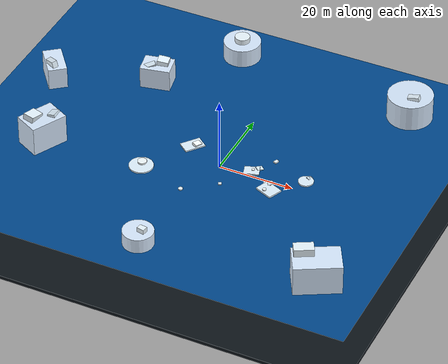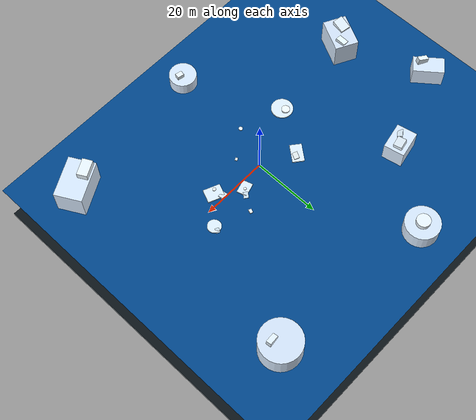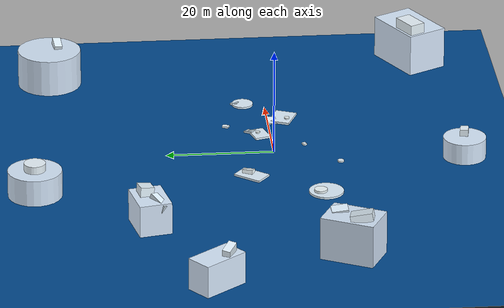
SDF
<?xml version="1.0"?>
<sdf version="1.8">
  <world name="ice_ocean">
    <physics name="default_physics" type="ignored">
      <max_step_size>0.004</max_step_size>
      <real_time_factor>1.0</real_time_factor>
    </physics>
    <gravity>0 0 -9.8</gravity>

    <scene>
      <ambient>0.45 0.50 0.60 1</ambient>
      <background>0.58 0.72 0.90 1</background>
      <shadows>true</shadows>
      <grid>false</grid>
      <fog>
        <color>0.68 0.75 0.85 1</color>
        <type>linear</type>
        <start>40</start>
        <end>250</end>
      </fog>
    </scene>

    <plugin filename="ignition-gazebo-physics-system" name="ignition::gazebo::systems::Physics"/>
    <plugin filename="ignition-gazebo-user-commands-system" name="ignition::gazebo::systems::UserCommands"/>
    <plugin filename="ignition-gazebo-scene-broadcaster-system" name="ignition::gazebo::systems::SceneBroadcaster"/>
    <plugin filename="ignition-gazebo-sensors-system" name="ignition::gazebo::systems::Sensors">
      <render_engine>ogre2</render_engine>
    </plugin>
    <plugin filename="ignition-gazebo-imu-system" name="ignition::gazebo::systems::Imu"/>

    <light type="directional" name="sun">
      <cast_shadows>true</cast_shadows>
      <pose>0 0 80 0 0.4 0</pose>
      <diffuse>0.95 0.95 0.98 1</diffuse>
      <specular>0.4 0.4 0.45 1</specular>
      <direction>-0.4 0.2 -0.9</direction>
      <attenuation>
        <range>400</range>
        <constant>0.8</constant>
        <linear>0.01</linear>
        <quadratic>0.001</quadratic>
      </attenuation>
    </light>
    <light type="directional" name="fill_light">
      <cast_shadows>false</cast_shadows>
      <pose>0 0 50 0 0 0</pose>
      <diffuse>0.30 0.36 0.48 1</diffuse>
      <specular>0.04 0.05 0.08 1</specular>
      <direction>0.6 -0.4 -0.6</direction>
    </light>

    <model name="water_surface">
      <static>true</static>
      <link name="link">
        <visual name="v">
          <geometry><plane><normal>0 0 1</normal><size>1000 1000</size><segments>200 200</segments></plane></geometry>
          <material>
            <ambient>0.00 0.10 0.22 1</ambient>
            <diffuse>0.00 0.28 0.55 0.85</diffuse>
            <specular>0.85 0.95 1.00 1</specular>
            <pbr>
              <metal>
                <metalness>0.0</metalness>
                <roughness>0.05</roughness>
              </metal>
            </pbr>
          </material>
          <transparency>0.2</transparency>
        </visual>
      </link>
    </model>

    <model name="sea_floor">
      <static>true</static>
      <pose>0 0 -15 0 0 0</pose>
      <link name="link">
        <visual name="v">
          <geometry><plane><normal>0 0 1</normal><size>1000 1000</size></plane></geometry>
          <material>
            <ambient>0.04 0.06 0.08 1</ambient>
            <diffuse>0.05 0.08 0.10 1</diffuse>
            <pbr>
              <metal>
                <metalness>0.0</metalness>
                <roughness>0.95</roughness>
              </metal>
            </pbr>
          </material>
        </visual>
      </link>
    </model>

    <model name="ice_floe_1">
      <static>true</static>
      <pose>8 2 0 0 0 0.3</pose>
      <link name="link">
        <collision name="c"><geometry><box><size>4.5 3.5 0.5</size></box></geometry></collision>
        <visual name="main"><geometry><box><size>4 3 0.5</size></box></geometry>
          <material><ambient>0.85 0.93 0.98 1</ambient><diffuse>0.88 0.95 1 1</diffuse>
            <pbr><metal><metalness>0.0</metalness><roughness>0.25</roughness></metal></pbr></material></visual>
        <visual name="chunk2"><pose>1.8 1.2 0.05 0.1 0.2 0.6</pose>
          <geometry><box><size>1.8 1.4 0.4</size></box></geometry>
          <material><ambient>0.82 0.9 0.96 1</ambient><diffuse>0.85 0.93 0.98 1</diffuse>
            <pbr><metal><metalness>0.0</metalness><roughness>0.3</roughness></metal></pbr></material></visual>
        <visual name="peak"><pose>0.3 0.2 0.35 0 0 0</pose>
          <geometry><cylinder><radius>0.4</radius><length>0.3</length></cylinder></geometry>
          <material><ambient>0.92 0.97 1 1</ambient><diffuse>0.95 0.99 1 1</diffuse>
            <pbr><metal><metalness>0.0</metalness><roughness>0.2</roughness></metal></pbr></material></visual>
      </link>
    </model>

    <model name="ice_floe_2">
      <static>true</static>
      <pose>15 -3 0 0 0 -0.4</pose>
      <link name="link">
        <collision name="c"><geometry><box><size>5.5 4.5 0.6</size></box></geometry></collision>
        <visual name="main"><geometry><box><size>5 4 0.6</size></box></geometry>
          <material><ambient>0.85 0.93 0.98 1</ambient><diffuse>0.88 0.95 1 1</diffuse>
            <pbr><metal><metalness>0.0</metalness><roughness>0.25</roughness></metal></pbr></material></visual>
        <visual name="chunk2"><pose>-2.0 1.5 0.1 0.1 -0.2 0.5</pose><geometry><box><size>2.2 1.6 0.45</size></box></geometry>
          <material><ambient>0.82 0.9 0.96 1</ambient><diffuse>0.85 0.93 0.98 1</diffuse>
            <pbr><metal><metalness>0.0</metalness><roughness>0.3</roughness></metal></pbr></material></visual>
        <visual name="peak"><pose>-0.5 -1.0 0.4 0 0 0</pose>
          <geometry><cylinder><radius>0.5</radius><length>0.35</length></cylinder></geometry>
          <material><ambient>0.92 0.97 1 1</ambient><diffuse>0.95 0.99 1 1</diffuse>
            <pbr><metal><metalness>0.0</metalness><roughness>0.2</roughness></metal></pbr></material></visual>
      </link>
    </model>

    <model name="ice_floe_3">
      <static>true</static>
      <pose>22 4 0 0 0 0.8</pose>
      <link name="link">
        <collision name="c"><geometry><cylinder><radius>2.2</radius><length>0.5</length></cylinder></geometry></collision>
        <visual name="main"><geometry><cylinder><radius>2</radius><length>0.5</length></cylinder></geometry>
          <material><ambient>0.85 0.93 0.98 1</ambient><diffuse>0.88 0.95 1 1</diffuse>
            <pbr><metal><metalness>0.0</metalness><roughness>0.25</roughness></metal></pbr></material></visual>
        <visual name="chunk2"><pose>1.3 0.8 0.05 0.1 0.2 0.3</pose><geometry><box><size>1.4 1.1 0.4</size></box></geometry>
          <material><ambient>0.82 0.9 0.96 1</ambient><diffuse>0.85 0.93 0.98 1</diffuse>
            <pbr><metal><metalness>0.0</metalness><roughness>0.3</roughness></metal></pbr></material></visual>
      </link>
    </model>

    <model name="ice_floe_4">
      <static>true</static>
      <pose>-10 5 0 0 0 0.9</pose>
      <link name="link">
        <collision name="c"><geometry><box><size>6 4 0.5</size></box></geometry></collision>
        <visual name="main"><geometry><box><size>5.5 3.5 0.5</size></box></geometry>
          <material><ambient>0.85 0.93 0.98 1</ambient><diffuse>0.88 0.95 1 1</diffuse>
            <pbr><metal><metalness>0.0</metalness><roughness>0.25</roughness></metal></pbr></material></visual>
        <visual name="peak"><pose>1.0 -0.5 0.4 0.2 0.1 0.2</pose><geometry><box><size>2 1.5 0.8</size></box></geometry>
          <material><ambient>0.92 0.97 1 1</ambient><diffuse>0.95 0.99 1 1</diffuse>
            <pbr><metal><metalness>0.0</metalness><roughness>0.2</roughness></metal></pbr></material></visual>
      </link>
    </model>

    <model name="ice_floe_5">
      <static>true</static>
      <pose>-18 -8 0 0 0 -0.2</pose>
      <link name="link">
        <collision name="c"><geometry><cylinder><radius>3.5</radius><length>0.5</length></cylinder></geometry></collision>
        <visual name="main"><geometry><cylinder><radius>3.2</radius><length>0.5</length></cylinder></geometry>
          <material><ambient>0.85 0.93 0.98 1</ambient><diffuse>0.88 0.95 1 1</diffuse>
            <pbr><metal><metalness>0.0</metalness><roughness>0.25</roughness></metal></pbr></material></visual>
        <visual name="peak"><pose>-0.5 1.0 0.45 0 0 0.5</pose><geometry><cylinder><radius>1.2</radius><length>0.5</length></cylinder></geometry>
          <material><ambient>0.92 0.97 1 1</ambient><diffuse>0.95 0.99 1 1</diffuse>
            <pbr><metal><metalness>0.0</metalness><roughness>0.2</roughness></metal></pbr></material></visual>
      </link>
    </model>

    <model name="growler_1">
      <static>true</static>
      <pose>3 -6 0 0 0 0.4</pose>
      <link name="link">
        <collision name="c"><geometry><box><size>0.9 0.7 0.35</size></box></geometry></collision>
        <visual name="v"><geometry><box><size>0.9 0.7 0.35</size></box></geometry>
          <material><ambient>0.88 0.94 0.98 1</ambient><diffuse>0.92 0.97 1 1</diffuse>
            <pbr><metal><metalness>0.0</metalness><roughness>0.3</roughness></metal></pbr></material></visual>
      </link>
    </model>
    <model name="growler_2">
      <static>true</static>
      <pose>12 8 0 0 0 1.2</pose>
      <link name="link">
        <collision name="c"><geometry><box><size>1.2 0.9 0.4</size></box></geometry></collision>
        <visual name="v"><geometry><box><size>1.2 0.9 0.4</size></box></geometry>
          <material><ambient>0.88 0.94 0.98 1</ambient><diffuse>0.92 0.97 1 1</diffuse>
            <pbr><metal><metalness>0.0</metalness><roughness>0.3</roughness></metal></pbr></material></visual>
      </link>
    </model>
    <model name="growler_3">
      <static>true</static>
      <pose>-5 -12 0 0 0 -0.8</pose>
      <link name="link">
        <collision name="c"><geometry><cylinder><radius>0.6</radius><length>0.3</length></cylinder></geometry></collision>
        <visual name="v"><geometry><cylinder><radius>0.6</radius><length>0.3</length></cylinder></geometry>
          <material><ambient>0.88 0.94 0.98 1</ambient><diffuse>0.92 0.97 1 1</diffuse>
            <pbr><metal><metalness>0.0</metalness><roughness>0.3</roughness></metal></pbr></material></visual>
      </link>
    </model>

    <model name="distant_iceberg_1">
      <static>true</static>
      <pose>-30 25 3 0 0 0.2</pose>
      <link name="link">
        <visual name="base"><geometry><box><size>8 6 6</size></box></geometry>
          <material><ambient>0.8 0.88 0.95 1</ambient><diffuse>0.85 0.92 1 1</diffuse>
            <pbr><metal><metalness>0.0</metalness><roughness>0.3</roughness></metal></pbr></material></visual>
        <visual name="peak"><pose>1.5 0.5 3.5 0.1 0.1 0</pose><geometry><box><size>3 2.5 2</size></box></geometry>
          <material><ambient>0.85 0.92 0.98 1</ambient><diffuse>0.9 0.96 1 1</diffuse>
            <pbr><metal><metalness>0.0</metalness><roughness>0.25</roughness></metal></pbr></material></visual>
        <visual name="ridge"><pose>-2.0 -1.0 2.0 0.2 -0.3 0.4</pose><geometry><box><size>4 1.5 2.5</size></box></geometry>
          <material><ambient>0.83 0.91 0.97 1</ambient><diffuse>0.88 0.95 1 1</diffuse>
            <pbr><metal><metalness>0.0</metalness><roughness>0.3</roughness></metal></pbr></material></visual>
      </link>
    </model>

    <model name="distant_iceberg_2">
      <static>true</static>
      <pose>-5 -35 2 0 0 -0.5</pose>
      <link name="link">
        <visual name="v"><geometry><cylinder><radius>4</radius><length>4</length></cylinder></geometry>
          <material><ambient>0.8 0.88 0.95 1</ambient><diffuse>0.85 0.92 1 1</diffuse>
            <pbr><metal><metalness>0.0</metalness><roughness>0.3</roughness></metal></pbr></material></visual>
        <visual name="peak"><pose>1 0.5 2.5 0 0 0.3</pose><geometry><box><size>2 1.5 1.5</size></box></geometry>
          <material><ambient>0.88 0.94 1 1</ambient><diffuse>0.92 0.97 1 1</diffuse>
            <pbr><metal><metalness>0.0</metalness><roughness>0.25</roughness></metal></pbr></material></visual>
      </link>
    </model>

    <model name="distant_iceberg_3">
      <static>true</static>
      <pose>-45 -10 4 0 0 1.1</pose>
      <link name="link">
        <visual name="base"><geometry><box><size>10 7 8</size></box></geometry>
          <material><ambient>0.78 0.86 0.94 1</ambient><diffuse>0.83 0.9 0.98 1</diffuse>
            <pbr><metal><metalness>0.0</metalness><roughness>0.3</roughness></metal></pbr></material></visual>
        <visual name="ridge"><pose>-2 1 4.5 0.1 0.2 0.3</pose><geometry><box><size>4 3 1.5</size></box></geometry>
          <material><ambient>0.85 0.92 0.98 1</ambient><diffuse>0.9 0.96 1 1</diffuse>
            <pbr><metal><metalness>0.0</metalness><roughness>0.25</roughness></metal></pbr></material></visual>
        <visual name="ridge2"><pose>3 -1 3.5 -0.2 0.1 0.5</pose><geometry><box><size>3 2 2</size></box></geometry>
          <material><ambient>0.83 0.91 0.97 1</ambient><diffuse>0.88 0.95 1 1</diffuse>
            <pbr><metal><metalness>0.0</metalness><roughness>0.3</roughness></metal></pbr></material></visual>
      </link>
    </model>

    <model name="distant_iceberg_4">
      <static>true</static>
      <pose>-15 45 2.5 0 0 0.7</pose>
      <link name="link">
        <visual name="v"><geometry><cylinder><radius>5</radius><length>5</length></cylinder></geometry>
          <material><ambient>0.79 0.87 0.95 1</ambient><diffuse>0.84 0.91 0.99 1</diffuse>
            <pbr><metal><metalness>0.0</metalness><roughness>0.3</roughness></metal></pbr></material></visual>
        <visual name="peak"><pose>0 0 3.2 0 0 0</pose><geometry><cylinder><radius>2</radius><length>1.5</length></cylinder></geometry>
          <material><ambient>0.88 0.94 1 1</ambient><diffuse>0.92 0.97 1 1</diffuse>
            <pbr><metal><metalness>0.0</metalness><roughness>0.25</roughness></metal></pbr></material></visual>
      </link>
    </model>

    <model name="distant_iceberg_5">
      <static>true</static>
      <pose>-55 15 3 0 0 -0.9</pose>
      <link name="link">
        <visual name="base"><geometry><box><size>9 5 6</size></box></geometry>
          <material><ambient>0.8 0.88 0.95 1</ambient><diffuse>0.85 0.92 1 1</diffuse>
            <pbr><metal><metalness>0.0</metalness><roughness>0.3</roughness></metal></pbr></material></visual>
        <visual name="ridge"><pose>2 -1 3.5 0.1 -0.2 0.4</pose><geometry><box><size>3 1.5 2</size></box></geometry>
          <material><ambient>0.85 0.92 0.98 1</ambient><diffuse>0.9 0.96 1 1</diffuse>
            <pbr><metal><metalness>0.0</metalness><roughness>0.25</roughness></metal></pbr></material></visual>
      </link>
    </model>

    <model name="distant_iceberg_6">
      <static>true</static>
      <pose>40 -30 4 0 0 0.5</pose>
      <link name="link">
        <visual name="base"><geometry><box><size>12 8 8</size></box></geometry>
          <material><ambient>0.8 0.88 0.95 1</ambient><diffuse>0.85 0.92 1 1</diffuse>
            <pbr><metal><metalness>0.0</metalness><roughness>0.3</roughness></metal></pbr></material></visual>
        <visual name="peak"><pose>-3 2 4.5 0 0 0</pose><geometry><box><size>5 3 3</size></box></geometry>
          <material><ambient>0.88 0.94 1 1</ambient><diffuse>0.92 0.97 1 1</diffuse>
            <pbr><metal><metalness>0.0</metalness><roughness>0.25</roughness></metal></pbr></material></visual>
      </link>
    </model>

    <model name="distant_iceberg_7">
      <static>true</static>
      <pose>35 40 3.5 0 0 -0.3</pose>
      <link name="link">
        <visual name="base"><geometry><cylinder><radius>6</radius><length>7</length></cylinder></geometry>
          <material><ambient>0.78 0.86 0.94 1</ambient><diffuse>0.83 0.9 0.98 1</diffuse>
            <pbr><metal><metalness>0.0</metalness><roughness>0.3</roughness></metal></pbr></material></visual>
        <visual name="ridge"><pose>2 -1 3.5 0.1 -0.2 0.4</pose><geometry><box><size>3 1.5 2</size></box></geometry>
          <material><ambient>0.85 0.92 0.98 1</ambient><diffuse>0.9 0.96 1 1</diffuse>
            <pbr><metal><metalness>0.0</metalness><roughness>0.25</roughness></metal></pbr></material></visual>
      </link>
    </model>

  </world>
</sdf>
